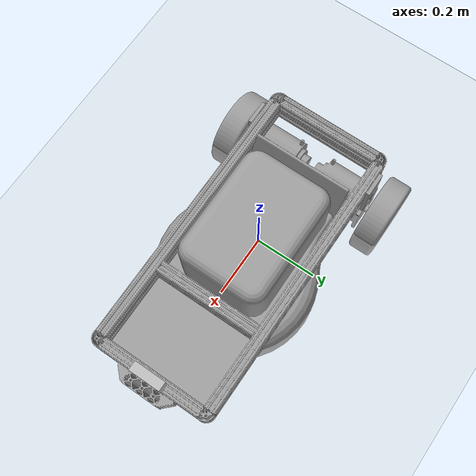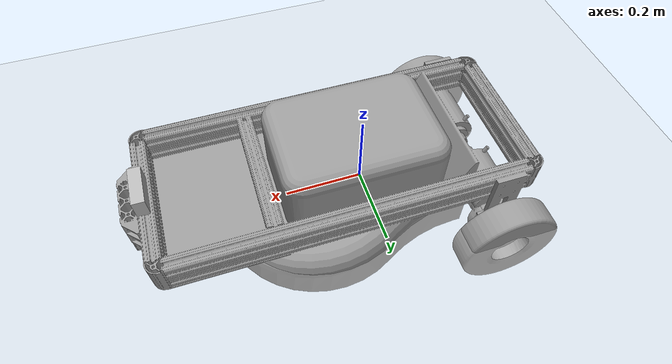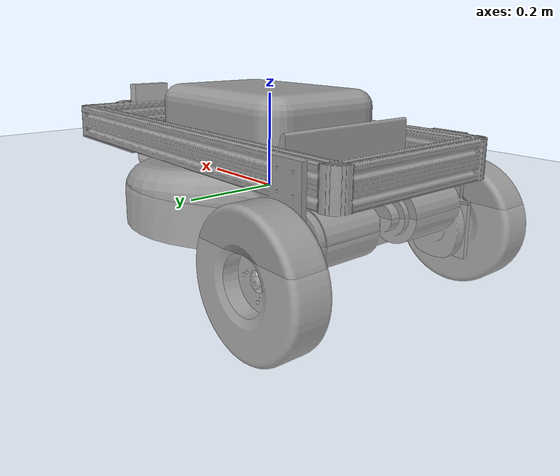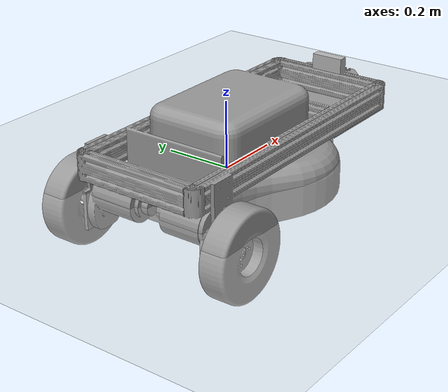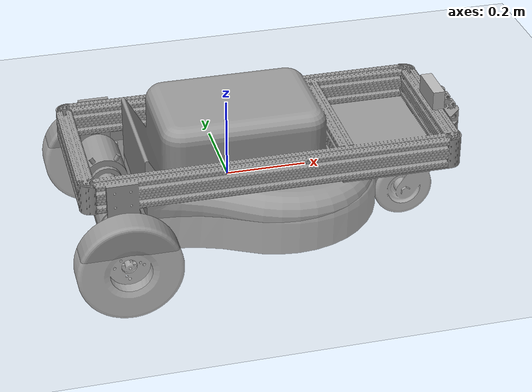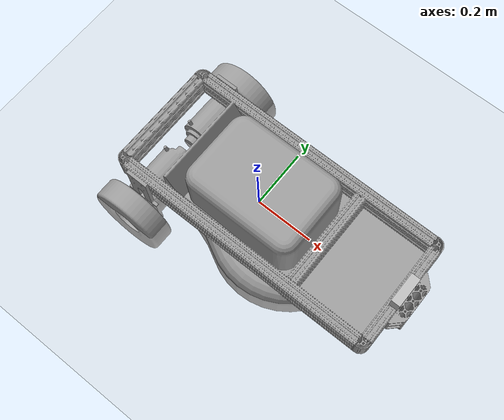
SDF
<?xml version="1.0" ?>
<sdf version="1.5">
  <world name="default">
    <!-- A global light source -->
    <include>
      <uri>model://sun</uri>
    </include>
    <!-- A ground plane -->
    <include>
      <uri>model://ground_plane</uri>
    </include>

    <!-- A testing model that includes the Velodyne sensor model -->
    <model name="my_grudsby">
      <include>
        <uri>model://grudsby</uri>
      </include>

      <!-- Attach the plugin to this model -->
      <plugin name="grudsby_control" filename="libgrudsby_plugin.so">
	</plugin>
    </model>

  </world>
</sdf>

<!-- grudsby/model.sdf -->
<sdf version='1.6'>
  <model name='Grudsby'>
    <link name='main_frame'>
      <pose frame=''>0.074158 -0 0.08875 0 -0 0</pose>
      <inertial>
        <mass>45</mass>
        <inertia>
          <ixx>0.166667</ixx>
          <ixy>0</ixy>
          <ixz>0</ixz>
          <iyy>0.166667</iyy>
          <iyz>0</iyz>
          <izz>0.166667</izz>
        </inertia>
        <pose frame=''>0 0 0 0 -0 0</pose>
      </inertial>
      <gravity>1</gravity>
      <self_collide>0</self_collide>
      <kinematic>0</kinematic>
      <visual name='visual'>
        <pose frame=''>0 0 0 0 -0 0</pose>
        <geometry>
          <mesh>
            <uri>model://grudsby/meshes/grudsby_body.STL</uri>
          </mesh>
        </geometry>
        <material>
          <lighting>1</lighting>
          <script>
            <uri>file://media/materials/scripts/gazebo.material</uri>
            <name>Gazebo/Grey</name>
          </script>
          <ambient>0.3 0.3 0.3 1</ambient>
          <diffuse>0.7 0.7 0.7 1</diffuse>
          <specular>0.01 0.01 0.01 1</specular>
          <emissive>0 0 0 1</emissive>
          <shader type='vertex'>
            <normal_map>__default__</normal_map>
          </shader>
        </material>
        <cast_shadows>1</cast_shadows>
        <transparency>0</transparency>
      </visual>
      <collision name='main_frame_collision'>
        <laser_retro>0</laser_retro>
        <max_contacts>10</max_contacts>
        <pose frame=''>0 0 0 0 -0 0</pose>
        <geometry>
          <mesh>
            <uri>model://grudsby/meshes/grudsby_body.STL</uri>
          </mesh>
        </geometry>
        <surface>
          <friction>
            <ode>
              <mu>1</mu>
              <mu2>1</mu2>
              <fdir1>0 0 0</fdir1>
              <slip1>0</slip1>
              <slip2>0</slip2>
            </ode>
            <torsional>
              <coefficient>1</coefficient>
              <patch_radius>0</patch_radius>
              <surface_radius>0</surface_radius>
              <use_patch_radius>1</use_patch_radius>
              <ode>
                <slip>0</slip>
              </ode>
            </torsional>
          </friction>
          <bounce>
            <restitution_coefficient>0</restitution_coefficient>
            <threshold>1e+06</threshold>
          </bounce>
          <contact>
            <collide_without_contact>0</collide_without_contact>
            <collide_without_contact_bitmask>1</collide_without_contact_bitmask>
            <collide_bitmask>1</collide_bitmask>
            <ode>
              <soft_cfm>0</soft_cfm>
              <soft_erp>0.2</soft_erp>
              <kp>1e+13</kp>
              <kd>1</kd>
              <max_vel>0.01</max_vel>
              <min_depth>0</min_depth>
            </ode>
            <bullet>
              <split_impulse>1</split_impulse>
              <split_impulse_penetration_threshold>-0.01</split_impulse_penetration_threshold>
              <soft_cfm>0</soft_cfm>
              <soft_erp>0.2</soft_erp>
              <kp>1e+13</kp>
              <kd>1</kd>
            </bullet>
          </contact>
        </surface>
      </collision>
    </link>
    <link name='right_wheel'>
      <pose frame=''>-0.298789 -0.26645 -0.05125 0 -0 0</pose>
      <inertial>
        <mass>1</mass>
        <inertia>
          <ixx>0.145833</ixx>
          <ixy>0</ixy>
          <ixz>0</ixz>
          <iyy>0.145833</iyy>
          <iyz>0</iyz>
          <izz>0.125</izz>
        </inertia>
        <pose frame=''>0 0 0 0 -0 0</pose>
      </inertial>
      <gravity>1</gravity>
      <self_collide>0</self_collide>
      <kinematic>0</kinematic>
      <visual name='visual'>
        <pose frame=''>0 0 0 0 -0 0</pose>
        <geometry>
          <mesh>
            <uri>model://grudsby/meshes/wheel.STL</uri>
          </mesh>
        </geometry>
        <material>
          <lighting>1</lighting>
          <script>
            <uri>file://media/materials/scripts/gazebo.material</uri>
            <name>Gazebo/Grey</name>
          </script>
          <ambient>0.3 0.3 0.3 1</ambient>
          <diffuse>0.7 0.7 0.7 1</diffuse>
          <specular>0.01 0.01 0.01 1</specular>
          <emissive>0 0 0 1</emissive>
          <shader type='vertex'>
            <normal_map>__default__</normal_map>
          </shader>
        </material>
        <cast_shadows>1</cast_shadows>
        <transparency>0</transparency>
      </visual>
      <collision name='right_wheel_collision'>
        <laser_retro>0</laser_retro>
        <max_contacts>10</max_contacts>
        <pose frame=''>0 0 0 0 -0 0</pose>
        <geometry>
          <mesh>
            <uri>model://grudsby/meshes/wheel.STL</uri>
          </mesh>
        </geometry>
        <surface>
          <friction>
            <ode>
              <mu>1</mu>
              <mu2>1</mu2>
              <fdir1>0 0 0</fdir1>
              <slip1>0</slip1>
              <slip2>0</slip2>
            </ode>
            <torsional>
              <coefficient>1</coefficient>
              <patch_radius>0</patch_radius>
              <surface_radius>0</surface_radius>
              <use_patch_radius>1</use_patch_radius>
              <ode>
                <slip>0</slip>
              </ode>
            </torsional>
          </friction>
          <bounce>
            <restitution_coefficient>0</restitution_coefficient>
            <threshold>1e+06</threshold>
          </bounce>
          <contact>
            <collide_without_contact>0</collide_without_contact>
            <collide_without_contact_bitmask>1</collide_without_contact_bitmask>
            <collide_bitmask>1</collide_bitmask>
            <ode>
              <soft_cfm>0</soft_cfm>
              <soft_erp>0.2</soft_erp>
              <kp>1e+13</kp>
              <kd>1</kd>
              <max_vel>0.01</max_vel>
              <min_depth>0</min_depth>
            </ode>
            <bullet>
              <split_impulse>1</split_impulse>
              <split_impulse_penetration_threshold>-0.01</split_impulse_penetration_threshold>
              <soft_cfm>0</soft_cfm>
              <soft_erp>0.2</soft_erp>
              <kp>1e+13</kp>
              <kd>1</kd>
            </bullet>
          </contact>
        </surface>
      </collision>
    </link>
    <link name='left_wheel'>
      <pose frame=''>-0.298789 0.26645 -0.05125 0 -0 0</pose>
      <inertial>
        <mass>1</mass>
        <inertia>
          <ixx>0.145833</ixx>
          <ixy>0</ixy>
          <ixz>0</ixz>
          <iyy>0.145833</iyy>
          <iyz>0</iyz>
          <izz>0.125</izz>
        </inertia>
        <pose frame=''>0 0 0 0 -0 0</pose>
      </inertial>
      <gravity>1</gravity>
      <self_collide>0</self_collide>
      <kinematic>0</kinematic>
      <visual name='visual'>
        <pose frame=''>0 0 0 0 -0 0</pose>
        <geometry>
          <mesh>
            <uri>model://grudsby/meshes/wheel.STL</uri>
          </mesh>
        </geometry>
        <material>
          <lighting>1</lighting>
          <script>
            <uri>file://media/materials/scripts/gazebo.material</uri>
            <name>Gazebo/Grey</name>
          </script>
          <ambient>0.3 0.3 0.3 1</ambient>
          <diffuse>0.7 0.7 0.7 1</diffuse>
          <specular>0.01 0.01 0.01 1</specular>
          <emissive>0 0 0 1</emissive>
          <shader type='vertex'>
            <normal_map>__default__</normal_map>
          </shader>
        </material>
        <cast_shadows>1</cast_shadows>
        <transparency>0</transparency>
      </visual>
      <collision name='left_wheel_collision'>
        <laser_retro>0</laser_retro>
        <max_contacts>10</max_contacts>
        <pose frame=''>0 0 0 0 -0 0</pose>
        <geometry>
          <mesh>
            <uri>model://grudsby/meshes/wheel.STL</uri>
          </mesh>
        </geometry>
        <surface>
          <friction>
            <ode>
              <mu>1</mu>
              <mu2>1</mu2>
              <fdir1>0 0 0</fdir1>
              <slip1>0</slip1>
              <slip2>0</slip2>
            </ode>
            <torsional>
              <coefficient>1</coefficient>
              <patch_radius>0</patch_radius>
              <surface_radius>0</surface_radius>
              <use_patch_radius>1</use_patch_radius>
              <ode>
                <slip>0</slip>
              </ode>
            </torsional>
          </friction>
          <bounce>
            <restitution_coefficient>0</restitution_coefficient>
            <threshold>1e+06</threshold>
          </bounce>
          <contact>
            <collide_without_contact>0</collide_without_contact>
            <collide_without_contact_bitmask>1</collide_without_contact_bitmask>
            <collide_bitmask>1</collide_bitmask>
            <ode>
              <soft_cfm>0</soft_cfm>
              <soft_erp>0.2</soft_erp>
              <kp>1e+13</kp>
              <kd>1</kd>
              <max_vel>0.01</max_vel>
              <min_depth>0</min_depth>
            </ode>
            <bullet>
              <split_impulse>1</split_impulse>
              <split_impulse_penetration_threshold>-0.01</split_impulse_penetration_threshold>
              <soft_cfm>0</soft_cfm>
              <soft_erp>0.2</soft_erp>
              <kp>1e+13</kp>
              <kd>1</kd>
            </bullet>
          </contact>
        </surface>
      </collision>
    </link>
    <link name='caster'>
      <pose frame=''>0.523421 -0 0.01375 0 -0 0</pose>
      <inertial>
        <mass>1</mass>
        <inertia>
          <ixx>0.1</ixx>
          <ixy>0</ixy>
          <ixz>0</ixz>
          <iyy>0.1</iyy>
          <iyz>0</iyz>
          <izz>0.1</izz>
        </inertia>
        <pose frame=''>0 0 0 0 -0 0</pose>
      </inertial>
      <gravity>1</gravity>
      <self_collide>0</self_collide>
      <kinematic>0</kinematic>
      <visual name='visual'>
        <pose frame=''>0 0 0 0 -0 0</pose>
        <geometry>
          <mesh>
            <uri>model://grudsby/meshes/caster.STL</uri>
          </mesh>
        </geometry>
        <material>
          <lighting>1</lighting>
          <script>
            <uri>file://media/materials/scripts/gazebo.material</uri>
            <name>Gazebo/Grey</name>
          </script>
          <ambient>0.3 0.3 0.3 1</ambient>
          <diffuse>0.7 0.7 0.7 1</diffuse>
          <specular>0.01 0.01 0.01 1</specular>
          <emissive>0 0 0 1</emissive>
          <shader type='vertex'>
            <normal_map>__default__</normal_map>
          </shader>
        </material>
        <cast_shadows>1</cast_shadows>
        <transparency>0</transparency>
      </visual>
      <collision name='caster_collision'>
        <laser_retro>0</laser_retro>
        <max_contacts>10</max_contacts>
        <pose frame=''>0 0 0 0 -0 0</pose>
        <geometry>
          <mesh>
            <uri>model://grudsby/meshes/caster.STL</uri>
          </mesh>
        </geometry>
        <surface>
          <friction>
            <ode>
              <mu>1</mu>
              <mu2>1</mu2>
              <fdir1>0 0 0</fdir1>
              <slip1>0</slip1>
              <slip2>0</slip2>
            </ode>
            <torsional>
              <coefficient>1</coefficient>
              <patch_radius>0</patch_radius>
              <surface_radius>0</surface_radius>
              <use_patch_radius>1</use_patch_radius>
              <ode>
                <slip>0</slip>
              </ode>
            </torsional>
          </friction>
          <bounce>
            <restitution_coefficient>0</restitution_coefficient>
            <threshold>1e+06</threshold>
          </bounce>
          <contact>
            <collide_without_contact>0</collide_without_contact>
            <collide_without_contact_bitmask>1</collide_without_contact_bitmask>
            <collide_bitmask>1</collide_bitmask>
            <ode>
              <soft_cfm>0</soft_cfm>
              <soft_erp>0.2</soft_erp>
              <kp>1e+13</kp>
              <kd>1</kd>
              <max_vel>0.01</max_vel>
              <min_depth>0</min_depth>
            </ode>
            <bullet>
              <split_impulse>1</split_impulse>
              <split_impulse_penetration_threshold>-0.01</split_impulse_penetration_threshold>
              <soft_cfm>0</soft_cfm>
              <soft_erp>0.2</soft_erp>
              <kp>1e+13</kp>
              <kd>1</kd>
            </bullet>
          </contact>
        </surface>
      </collision>
    </link>
    <joint name='right_axle_joint' type='revolute'>
      <parent>main_frame</parent>
      <child>right_wheel</child>
      <pose frame=''>0 0 0 0 -0 0</pose>
      <axis>
        <xyz>0 1 0</xyz>
        <use_parent_model_frame>0</use_parent_model_frame>
        <limit>
          <lower>-1.79769e+308</lower>
          <upper>1.79769e+308</upper>
          <effort>-1</effort>
          <velocity>-1</velocity>
        </limit>
        <dynamics>
          <spring_reference>0</spring_reference>
          <spring_stiffness>0</spring_stiffness>
          <damping>0</damping>
        </dynamics>
      </axis>
      <physics>
        <ode>
          <limit>
            <cfm>0</cfm>
            <erp>0.2</erp>
          </limit>
          <suspension>
            <cfm>0</cfm>
            <erp>0.2</erp>
          </suspension>
        </ode>
      </physics>
    </joint>
    <joint name='left_axle_joint' type='revolute'>
      <parent>main_frame</parent>
      <child>left_wheel</child>
      <pose frame=''>0 0 0 0 -0 0</pose>
      <axis>
        <xyz>0 1 0</xyz>
        <use_parent_model_frame>0</use_parent_model_frame>
        <limit>
          <lower>-1.79769e+308</lower>
          <upper>1.79769e+308</upper>
          <effort>-1</effort>
          <velocity>-1</velocity>
        </limit>
        <dynamics>
          <spring_reference>0</spring_reference>
          <spring_stiffness>0</spring_stiffness>
          <damping>0</damping>
        </dynamics>
      </axis>
      <physics>
        <ode>
          <limit>
            <cfm>0</cfm>
            <erp>0.2</erp>
          </limit>
          <suspension>
            <cfm>0</cfm>
            <erp>0.2</erp>
          </suspension>
        </ode>
      </physics>
    </joint>
    <joint name='caster_joint' type='revolute'>
      <parent>main_frame</parent>
      <child>caster</child>
      <pose frame=''>0 0 0 0 -0 0</pose>
      <axis>
        <xyz>0 0 1</xyz>
        <use_parent_model_frame>0</use_parent_model_frame>
        <limit>
          <lower>-1.79769e+308</lower>
          <upper>1.79769e+308</upper>
          <effort>-1</effort>
          <velocity>-1</velocity>
        </limit>
        <dynamics>
          <spring_reference>0</spring_reference>
          <spring_stiffness>0</spring_stiffness>
          <damping>0</damping>
        </dynamics>
      </axis>
      <physics>
        <ode>
          <limit>
            <cfm>0</cfm>
            <erp>0.2</erp>
          </limit>
          <suspension>
            <cfm>0</cfm>
            <erp>0.2</erp>
          </suspension>
        </ode>
      </physics>
    </joint>
    <static>0</static>
    <allow_auto_disable>1</allow_auto_disable>
    <include>
      <uri>model://zed_camera</uri>
      <pose frame=''>.48 -.05 .11 0 0 0</pose>
    </include>
    <joint name="camera_joint" type="fixed">
      <parent>main_frame</parent>
      <child>stereocamera::link</child>
      <pose frame=''>0 0 0 0 -0 0</pose>
    </joint>
  </model>
</sdf>

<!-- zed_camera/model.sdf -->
<sdf version="1.5">
  <model name="stereocamera">
    <link name="link">
      <pose>0.05 0.05 0.05 0 0 0</pose>
      <inertial>
        <mass>0.1</mass>
        <inertia>
          <ixx>0.000166667</ixx>
          <iyy>0.000166667</iyy>
          <izz>0.000166667</izz>
        </inertia>
      </inertial>
      <collision name="collision">
        <geometry>
          <box>
            <size>0.03 0.1 0.05</size>
          </box>
        </geometry>
      </collision>
      <visual name="visual">
        <geometry>
          <box>
            <size>0.03 0.1 0.05</size>
          </box>
        </geometry>
      </visual>
      <sensor name="camera" type="multicamera">
        <always_on>1</always_on>
        <update_rate>30</update_rate>
        <visualize>false</visualize>
        <camera name="left">
          <pose>0 0.2 0 0 0 0</pose>
          <horizontal_fov>1.919</horizontal_fov>
          <image>
            <width>1280</width>
            <height>720</height>
          </image>
          <clip>
            <near>0.5</near>
            <far>20</far>
          </clip>
          <noise>
           <!-- Use gaussian noise -->
           <type>gaussian</type>
           <mean>0.0</mean>
           <stddev>0.02</stddev>
          </noise>
        </camera>
        <camera name="right">
          <pose>0 -0.2 0 0 0 0</pose>
          <horizontal_fov>1.919</horizontal_fov>
          <image>
            <width>1280</width>
            <height>720</height>
          </image>
          <clip>
            <near>0.5</near>
            <far>20</far>
          </clip>
          <noise>
           <!-- Use gaussian noise -->
           <type>gaussian</type>
           <mean>0.0</mean>
           <stddev>0.02</stddev>
         </noise>
        </camera>
      </sensor>
    </link>
  </model>
</sdf>
